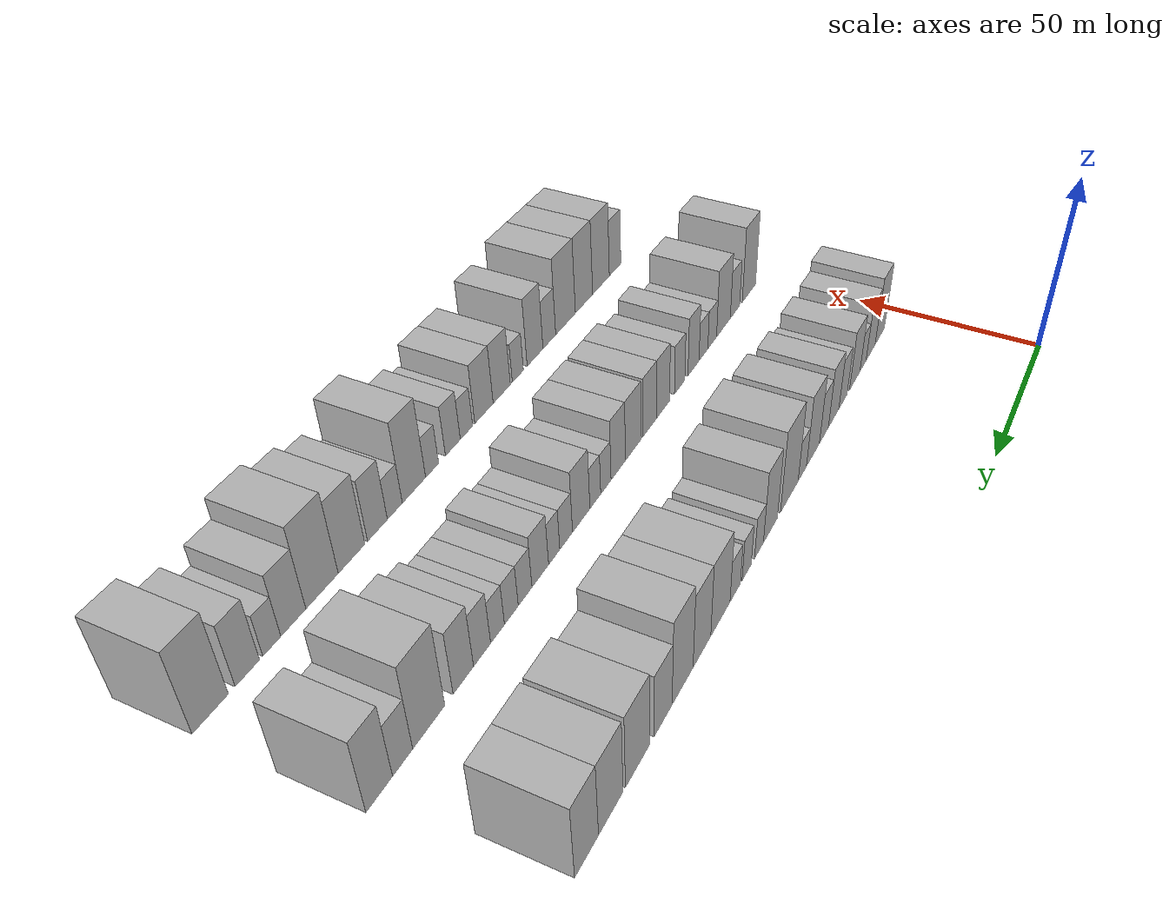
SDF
<sdf version="1.6">
 <world name="default">
  <model name="building_46">
   <static>1</static>
   <pose>50.0000 14.4364 0 0.000000 0.000000 0.000000</pose>
   <link name="link">
    <pose>0 0 10.50 0 0 0</pose>
    <collision name="collision"><geometry><box><size>20.0000 8.4533 21.0000</size></box></geometry></collision>
    <visual name="visual">
     <cast_shadows>0</cast_shadows>
     <geometry><box><size>20.0000 8.4533 21.0000</size></box></geometry>
     <material>
      <script>
       <uri>model://HANNAS_wall/materials/scripts</uri>
       <uri>model://HANNAS_wall/materials/textures</uri>
       <name>vrc/HANNAS_wall</name>
      </script>
     </material>
    </visual>
   </link>
  </model>
  <model name="building_47">
   <static>1</static>
   <pose>50.0000 22.6697 0 0.000000 0.000000 0.000000</pose>
   <link name="link">
    <pose>0 0 9.00 0 0 0</pose>
    <collision name="collision"><geometry><box><size>20.0000 8.0134 18.0000</size></box></geometry></collision>
    <visual name="visual">
     <cast_shadows>0</cast_shadows>
     <geometry><box><size>20.0000 8.0134 18.0000</size></box></geometry>
     <material>
      <script>
       <uri>model://HANNAS_wall/materials/scripts</uri>
       <uri>model://HANNAS_wall/materials/textures</uri>
       <name>vrc/HANNAS_wall</name>
      </script>
     </material>
    </visual>
   </link>
  </model>
  <model name="building_48">
   <static>1</static>
   <pose>50.0000 29.3052 0 0.000000 0.000000 0.000000</pose>
   <link name="link">
    <pose>0 0 6.00 0 0 0</pose>
    <collision name="collision"><geometry><box><size>20.0000 5.2575 12.0000</size></box></geometry></collision>
    <visual name="visual">
     <cast_shadows>0</cast_shadows>
     <geometry><box><size>20.0000 5.2575 12.0000</size></box></geometry>
     <material>
      <script>
       <uri>model://HANNAS_wall/materials/scripts</uri>
       <uri>model://HANNAS_wall/materials/textures</uri>
       <name>vrc/HANNAS_wall</name>
      </script>
     </material>
    </visual>
   </link>
  </model>
  <model name="building_49">
   <static>1</static>
   <pose>50.0000 36.2653 0 0.000000 0.000000 0.000000</pose>
   <link name="link">
    <pose>0 0 9.00 0 0 0</pose>
    <collision name="collision"><geometry><box><size>20.0000 8.6627 18.0000</size></box></geometry></collision>
    <visual name="visual">
     <cast_shadows>0</cast_shadows>
     <geometry><box><size>20.0000 8.6627 18.0000</size></box></geometry>
     <material>
      <script>
       <uri>model://HANNAS_wall/materials/scripts</uri>
       <uri>model://HANNAS_wall/materials/textures</uri>
       <name>vrc/HANNAS_wall</name>
      </script>
     </material>
    </visual>
   </link>
  </model>
  <model name="building_50">
   <static>1</static>
   <pose>50.0000 45.8664 0 0.000000 0.000000 0.000000</pose>
   <link name="link">
    <pose>0 0 7.50 0 0 0</pose>
    <collision name="collision"><geometry><box><size>20.0000 6.5394 15.0000</size></box></geometry></collision>
    <visual name="visual">
     <cast_shadows>0</cast_shadows>
     <geometry><box><size>20.0000 6.5394 15.0000</size></box></geometry>
     <material>
      <script>
       <uri>model://HANNAS_wall/materials/scripts</uri>
       <uri>model://HANNAS_wall/materials/textures</uri>
       <name>vrc/HANNAS_wall</name>
      </script>
     </material>
    </visual>
   </link>
  </model>
  <model name="building_51">
   <static>1</static>
   <pose>50.0000 53.1844 0 0.000000 0.000000 0.000000</pose>
   <link name="link">
    <pose>0 0 9.00 0 0 0</pose>
    <collision name="collision"><geometry><box><size>20.0000 8.0967 18.0000</size></box></geometry></collision>
    <visual name="visual">
     <cast_shadows>0</cast_shadows>
     <geometry><box><size>20.0000 8.0967 18.0000</size></box></geometry>
     <material>
      <script>
       <uri>model://HANNAS_wall/materials/scripts</uri>
       <uri>model://HANNAS_wall/materials/textures</uri>
       <name>vrc/HANNAS_wall</name>
      </script>
     </material>
    </visual>
   </link>
  </model>
  <model name="building_52">
   <static>1</static>
   <pose>50.0000 60.5724 0 0.000000 0.000000 0.000000</pose>
   <link name="link">
    <pose>0 0 7.50 0 0 0</pose>
    <collision name="collision"><geometry><box><size>20.0000 6.6792 15.0000</size></box></geometry></collision>
    <visual name="visual">
     <cast_shadows>0</cast_shadows>
     <geometry><box><size>20.0000 6.6792 15.0000</size></box></geometry>
     <material>
      <script>
       <uri>model://HANNAS_wall/materials/scripts</uri>
       <uri>model://HANNAS_wall/materials/textures</uri>
       <name>vrc/HANNAS_wall</name>
      </script>
     </material>
    </visual>
   </link>
  </model>
  <model name="building_53">
   <static>1</static>
   <pose>50.0000 68.5782 0 0.000000 0.000000 0.000000</pose>
   <link name="link">
    <pose>0 0 10.50 0 0 0</pose>
    <collision name="collision"><geometry><box><size>20.0000 9.3326 21.0000</size></box></geometry></collision>
    <visual name="visual">
     <cast_shadows>0</cast_shadows>
     <geometry><box><size>20.0000 9.3326 21.0000</size></box></geometry>
     <material>
      <script>
       <uri>model://HANNAS_wall/materials/scripts</uri>
       <uri>model://HANNAS_wall/materials/textures</uri>
       <name>vrc/HANNAS_wall</name>
      </script>
     </material>
    </visual>
   </link>
  </model>
  <model name="building_54">
   <static>1</static>
   <pose>50.0000 76.1316 0 0.000000 0.000000 0.000000</pose>
   <link name="link">
    <pose>0 0 6.00 0 0 0</pose>
    <collision name="collision"><geometry><box><size>20.0000 5.7741 12.0000</size></box></geometry></collision>
    <visual name="visual">
     <cast_shadows>0</cast_shadows>
     <geometry><box><size>20.0000 5.7741 12.0000</size></box></geometry>
     <material>
      <script>
       <uri>model://HANNAS_wall/materials/scripts</uri>
       <uri>model://HANNAS_wall/materials/textures</uri>
       <name>vrc/HANNAS_wall</name>
      </script>
     </material>
    </visual>
   </link>
  </model>
  <model name="building_55">
   <static>1</static>
   <pose>50.0000 84.9150 0 0.000000 0.000000 0.000000</pose>
   <link name="link">
    <pose>0 0 12.00 0 0 0</pose>
    <collision name="collision"><geometry><box><size>20.0000 11.7927 24.0000</size></box></geometry></collision>
    <visual name="visual">
     <cast_shadows>0</cast_shadows>
     <geometry><box><size>20.0000 11.7927 24.0000</size></box></geometry>
     <material>
      <script>
       <uri>model://HANNAS_wall/materials/scripts</uri>
       <uri>model://HANNAS_wall/materials/textures</uri>
       <name>vrc/HANNAS_wall</name>
      </script>
     </material>
    </visual>
   </link>
  </model>
  <model name="building_56">
   <static>1</static>
   <pose>50.0000 97.1790 0 0.000000 0.000000 0.000000</pose>
   <link name="link">
    <pose>0 0 10.50 0 0 0</pose>
    <collision name="collision"><geometry><box><size>20.0000 8.7355 21.0000</size></box></geometry></collision>
    <visual name="visual">
     <cast_shadows>0</cast_shadows>
     <geometry><box><size>20.0000 8.7355 21.0000</size></box></geometry>
     <material>
      <script>
       <uri>model://HANNAS_wall/materials/scripts</uri>
       <uri>model://HANNAS_wall/materials/textures</uri>
       <name>vrc/HANNAS_wall</name>
      </script>
     </material>
    </visual>
   </link>
  </model>
  <model name="building_57">
   <static>1</static>
   <pose>50.0000 104.2175 0 0.000000 0.000000 0.000000</pose>
   <link name="link">
    <pose>0 0 6.00 0 0 0</pose>
    <collision name="collision"><geometry><box><size>20.0000 5.3414 12.0000</size></box></geometry></collision>
    <visual name="visual">
     <cast_shadows>0</cast_shadows>
     <geometry><box><size>20.0000 5.3414 12.0000</size></box></geometry>
     <material>
      <script>
       <uri>model://HANNAS_wall/materials/scripts</uri>
       <uri>model://HANNAS_wall/materials/textures</uri>
       <name>vrc/HANNAS_wall</name>
      </script>
     </material>
    </visual>
   </link>
  </model>
  <model name="building_58">
   <static>1</static>
   <pose>50.0000 111.5356 0 0.000000 0.000000 0.000000</pose>
   <link name="link">
    <pose>0 0 6.00 0 0 0</pose>
    <collision name="collision"><geometry><box><size>20.0000 5.2949 12.0000</size></box></geometry></collision>
    <visual name="visual">
     <cast_shadows>0</cast_shadows>
     <geometry><box><size>20.0000 5.2949 12.0000</size></box></geometry>
     <material>
      <script>
       <uri>model://HANNAS_wall/materials/scripts</uri>
       <uri>model://HANNAS_wall/materials/textures</uri>
       <name>vrc/HANNAS_wall</name>
      </script>
     </material>
    </visual>
   </link>
  </model>
  <model name="building_59">
   <static>1</static>
   <pose>50.0000 118.0981 0 0.000000 0.000000 0.000000</pose>
   <link name="link">
    <pose>0 0 6.00 0 0 0</pose>
    <collision name="collision"><geometry><box><size>20.0000 5.8301 12.0000</size></box></geometry></collision>
    <visual name="visual">
     <cast_shadows>0</cast_shadows>
     <geometry><box><size>20.0000 5.8301 12.0000</size></box></geometry>
     <material>
      <script>
       <uri>model://HANNAS_wall/materials/scripts</uri>
       <uri>model://HANNAS_wall/materials/textures</uri>
       <name>vrc/HANNAS_wall</name>
      </script>
     </material>
    </visual>
   </link>
  </model>
  <model name="building_60">
   <static>1</static>
   <pose>50.0000 126.1869 0 0.000000 0.000000 0.000000</pose>
   <link name="link">
    <pose>0 0 10.50 0 0 0</pose>
    <collision name="collision"><geometry><box><size>20.0000 10.3473 21.0000</size></box></geometry></collision>
    <visual name="visual">
     <cast_shadows>0</cast_shadows>
     <geometry><box><size>20.0000 10.3473 21.0000</size></box></geometry>
     <material>
      <script>
       <uri>model://HANNAS_wall/materials/scripts</uri>
       <uri>model://HANNAS_wall/materials/textures</uri>
       <name>vrc/HANNAS_wall</name>
      </script>
     </material>
    </visual>
   </link>
  </model>
  <model name="building_61">
   <static>1</static>
   <pose>50.0000 135.8822 0 0.000000 0.000000 0.000000</pose>
   <link name="link">
    <pose>0 0 10.50 0 0 0</pose>
    <collision name="collision"><geometry><box><size>20.0000 9.0435 21.0000</size></box></geometry></collision>
    <visual name="visual">
     <cast_shadows>0</cast_shadows>
     <geometry><box><size>20.0000 9.0435 21.0000</size></box></geometry>
     <material>
      <script>
       <uri>model://HANNAS_wall/materials/scripts</uri>
       <uri>model://HANNAS_wall/materials/textures</uri>
       <name>vrc/HANNAS_wall</name>
      </script>
     </material>
    </visual>
   </link>
  </model>
  <model name="building_62">
   <static>1</static>
   <pose>50.0000 145.4739 0 0.000000 0.000000 0.000000</pose>
   <link name="link">
    <pose>0 0 12.00 0 0 0</pose>
    <collision name="collision"><geometry><box><size>20.0000 10.1399 24.0000</size></box></geometry></collision>
    <visual name="visual">
     <cast_shadows>0</cast_shadows>
     <geometry><box><size>20.0000 10.1399 24.0000</size></box></geometry>
     <material>
      <script>
       <uri>model://HANNAS_wall/materials/scripts</uri>
       <uri>model://HANNAS_wall/materials/textures</uri>
       <name>vrc/HANNAS_wall</name>
      </script>
     </material>
    </visual>
   </link>
  </model>
  <model name="building_63">
   <static>1</static>
   <pose>50.0000 154.6867 0 0.000000 0.000000 0.000000</pose>
   <link name="link">
    <pose>0 0 9.00 0 0 0</pose>
    <collision name="collision"><geometry><box><size>20.0000 8.2855 18.0000</size></box></geometry></collision>
    <visual name="visual">
     <cast_shadows>0</cast_shadows>
     <geometry><box><size>20.0000 8.2855 18.0000</size></box></geometry>
     <material>
      <script>
       <uri>model://HANNAS_wall/materials/scripts</uri>
       <uri>model://HANNAS_wall/materials/textures</uri>
       <name>vrc/HANNAS_wall</name>
      </script>
     </material>
    </visual>
   </link>
  </model>
  <model name="building_64">
   <static>1</static>
   <pose>50.0000 166.0288 0 0.000000 0.000000 0.000000</pose>
   <link name="link">
    <pose>0 0 10.50 0 0 0</pose>
    <collision name="collision"><geometry><box><size>20.0000 10.3989 21.0000</size></box></geometry></collision>
    <visual name="visual">
     <cast_shadows>0</cast_shadows>
     <geometry><box><size>20.0000 10.3989 21.0000</size></box></geometry>
     <material>
      <script>
       <uri>model://HANNAS_wall/materials/scripts</uri>
       <uri>model://HANNAS_wall/materials/textures</uri>
       <name>vrc/HANNAS_wall</name>
      </script>
     </material>
    </visual>
   </link>
  </model>
  <model name="building_65">
   <static>1</static>
   <pose>50.0000 177.1291 0 0.000000 0.000000 0.000000</pose>
   <link name="link">
    <pose>0 0 10.50 0 0 0</pose>
    <collision name="collision"><geometry><box><size>20.0000 9.8017 21.0000</size></box></geometry></collision>
    <visual name="visual">
     <cast_shadows>0</cast_shadows>
     <geometry><box><size>20.0000 9.8017 21.0000</size></box></geometry>
     <material>
      <script>
       <uri>model://HANNAS_wall/materials/scripts</uri>
       <uri>model://HANNAS_wall/materials/textures</uri>
       <name>vrc/HANNAS_wall</name>
      </script>
     </material>
    </visual>
   </link>
  </model>
  <model name="building_66">
   <static>1</static>
   <pose>50.0000 186.5587 0 0.000000 0.000000 0.000000</pose>
   <link name="link">
    <pose>0 0 10.50 0 0 0</pose>
    <collision name="collision"><geometry><box><size>20.0000 9.0574 21.0000</size></box></geometry></collision>
    <visual name="visual">
     <cast_shadows>0</cast_shadows>
     <geometry><box><size>20.0000 9.0574 21.0000</size></box></geometry>
     <material>
      <script>
       <uri>model://HANNAS_wall/materials/scripts</uri>
       <uri>model://HANNAS_wall/materials/textures</uri>
       <name>vrc/HANNAS_wall</name>
      </script>
     </material>
    </visual>
   </link>
  </model>
  <model name="building_138">
   <static>1</static>
   <pose>90.0000 10.0137 0 0.000000 0.000000 0.000000</pose>
   <link name="link">
    <pose>0 0 12.00 0 0 0</pose>
    <collision name="collision"><geometry><box><size>20.0000 10.1061 24.0000</size></box></geometry></collision>
    <visual name="visual">
     <cast_shadows>0</cast_shadows>
     <geometry><box><size>20.0000 10.1061 24.0000</size></box></geometry>
     <material>
      <script>
       <uri>model://HANNAS_wall/materials/scripts</uri>
       <uri>model://HANNAS_wall/materials/textures</uri>
       <name>vrc/HANNAS_wall</name>
      </script>
     </material>
    </visual>
   </link>
  </model>
  <model name="building_139">
   <static>1</static>
   <pose>90.0000 20.4839 0 0.000000 0.000000 0.000000</pose>
   <link name="link">
    <pose>0 0 7.50 0 0 0</pose>
    <collision name="collision"><geometry><box><size>20.0000 6.8341 15.0000</size></box></geometry></collision>
    <visual name="visual">
     <cast_shadows>0</cast_shadows>
     <geometry><box><size>20.0000 6.8341 15.0000</size></box></geometry>
     <material>
      <script>
       <uri>model://HANNAS_wall/materials/scripts</uri>
       <uri>model://HANNAS_wall/materials/textures</uri>
       <name>vrc/HANNAS_wall</name>
      </script>
     </material>
    </visual>
   </link>
  </model>
  <model name="building_140">
   <static>1</static>
   <pose>90.0000 28.7812 0 0.000000 0.000000 0.000000</pose>
   <link name="link">
    <pose>0 0 10.50 0 0 0</pose>
    <collision name="collision"><geometry><box><size>20.0000 9.7606 21.0000</size></box></geometry></collision>
    <visual name="visual">
     <cast_shadows>0</cast_shadows>
     <geometry><box><size>20.0000 9.7606 21.0000</size></box></geometry>
     <material>
      <script>
       <uri>model://HANNAS_wall/materials/scripts</uri>
       <uri>model://HANNAS_wall/materials/textures</uri>
       <name>vrc/HANNAS_wall</name>
      </script>
     </material>
    </visual>
   </link>
  </model>
  <model name="building_141">
   <static>1</static>
   <pose>90.0000 36.6613 0 0.000000 0.000000 0.000000</pose>
   <link name="link">
    <pose>0 0 6.00 0 0 0</pose>
    <collision name="collision"><geometry><box><size>20.0000 5.9995 12.0000</size></box></geometry></collision>
    <visual name="visual">
     <cast_shadows>0</cast_shadows>
     <geometry><box><size>20.0000 5.9995 12.0000</size></box></geometry>
     <material>
      <script>
       <uri>model://HANNAS_wall/materials/scripts</uri>
       <uri>model://HANNAS_wall/materials/textures</uri>
       <name>vrc/HANNAS_wall</name>
      </script>
     </material>
    </visual>
   </link>
  </model>
  <model name="building_142">
   <static>1</static>
   <pose>90.0000 42.6342 0 0.000000 0.000000 0.000000</pose>
   <link name="link">
    <pose>0 0 6.00 0 0 0</pose>
    <collision name="collision"><geometry><box><size>20.0000 5.9464 12.0000</size></box></geometry></collision>
    <visual name="visual">
     <cast_shadows>0</cast_shadows>
     <geometry><box><size>20.0000 5.9464 12.0000</size></box></geometry>
     <material>
      <script>
       <uri>model://HANNAS_wall/materials/scripts</uri>
       <uri>model://HANNAS_wall/materials/textures</uri>
       <name>vrc/HANNAS_wall</name>
      </script>
     </material>
    </visual>
   </link>
  </model>
  <model name="building_143">
   <static>1</static>
   <pose>90.0000 49.2237 0 0.000000 0.000000 0.000000</pose>
   <link name="link">
    <pose>0 0 9.00 0 0 0</pose>
    <collision name="collision"><geometry><box><size>20.0000 7.2327 18.0000</size></box></geometry></collision>
    <visual name="visual">
     <cast_shadows>0</cast_shadows>
     <geometry><box><size>20.0000 7.2327 18.0000</size></box></geometry>
     <material>
      <script>
       <uri>model://HANNAS_wall/materials/scripts</uri>
       <uri>model://HANNAS_wall/materials/textures</uri>
       <name>vrc/HANNAS_wall</name>
      </script>
     </material>
    </visual>
   </link>
  </model>
  <model name="building_144">
   <static>1</static>
   <pose>90.0000 58.0973 0 0.000000 0.000000 0.000000</pose>
   <link name="link">
    <pose>0 0 7.50 0 0 0</pose>
    <collision name="collision"><geometry><box><size>20.0000 6.5145 15.0000</size></box></geometry></collision>
    <visual name="visual">
     <cast_shadows>0</cast_shadows>
     <geometry><box><size>20.0000 6.5145 15.0000</size></box></geometry>
     <material>
      <script>
       <uri>model://HANNAS_wall/materials/scripts</uri>
       <uri>model://HANNAS_wall/materials/textures</uri>
       <name>vrc/HANNAS_wall</name>
      </script>
     </material>
    </visual>
   </link>
  </model>
  <model name="building_145">
   <static>1</static>
   <pose>90.0000 68.2538 0 0.000000 0.000000 0.000000</pose>
   <link name="link">
    <pose>0 0 9.00 0 0 0</pose>
    <collision name="collision"><geometry><box><size>20.0000 7.7984 18.0000</size></box></geometry></collision>
    <visual name="visual">
     <cast_shadows>0</cast_shadows>
     <geometry><box><size>20.0000 7.7984 18.0000</size></box></geometry>
     <material>
      <script>
       <uri>model://HANNAS_wall/materials/scripts</uri>
       <uri>model://HANNAS_wall/materials/textures</uri>
       <name>vrc/HANNAS_wall</name>
      </script>
     </material>
    </visual>
   </link>
  </model>
  <model name="building_146">
   <static>1</static>
   <pose>90.0000 76.1648 0 0.000000 0.000000 0.000000</pose>
   <link name="link">
    <pose>0 0 9.00 0 0 0</pose>
    <collision name="collision"><geometry><box><size>20.0000 8.0236 18.0000</size></box></geometry></collision>
    <visual name="visual">
     <cast_shadows>0</cast_shadows>
     <geometry><box><size>20.0000 8.0236 18.0000</size></box></geometry>
     <material>
      <script>
       <uri>model://HANNAS_wall/materials/scripts</uri>
       <uri>model://HANNAS_wall/materials/textures</uri>
       <name>vrc/HANNAS_wall</name>
      </script>
     </material>
    </visual>
   </link>
  </model>
  <model name="building_147">
   <static>1</static>
   <pose>90.0000 85.4776 0 0.000000 0.000000 0.000000</pose>
   <link name="link">
    <pose>0 0 9.00 0 0 0</pose>
    <collision name="collision"><geometry><box><size>20.0000 8.6020 18.0000</size></box></geometry></collision>
    <visual name="visual">
     <cast_shadows>0</cast_shadows>
     <geometry><box><size>20.0000 8.6020 18.0000</size></box></geometry>
     <material>
      <script>
       <uri>model://HANNAS_wall/materials/scripts</uri>
       <uri>model://HANNAS_wall/materials/textures</uri>
       <name>vrc/HANNAS_wall</name>
      </script>
     </material>
    </visual>
   </link>
  </model>
  <model name="building_148">
   <static>1</static>
   <pose>90.0000 93.6352 0 0.000000 0.000000 0.000000</pose>
   <link name="link">
    <pose>0 0 9.00 0 0 0</pose>
    <collision name="collision"><geometry><box><size>20.0000 7.7131 18.0000</size></box></geometry></collision>
    <visual name="visual">
     <cast_shadows>0</cast_shadows>
     <geometry><box><size>20.0000 7.7131 18.0000</size></box></geometry>
     <material>
      <script>
       <uri>model://HANNAS_wall/materials/scripts</uri>
       <uri>model://HANNAS_wall/materials/textures</uri>
       <name>vrc/HANNAS_wall</name>
      </script>
     </material>
    </visual>
   </link>
  </model>
  <model name="building_149">
   <static>1</static>
   <pose>90.0000 100.1645 0 0.000000 0.000000 0.000000</pose>
   <link name="link">
    <pose>0 0 6.00 0 0 0</pose>
    <collision name="collision"><geometry><box><size>20.0000 5.3455 12.0000</size></box></geometry></collision>
    <visual name="visual">
     <cast_shadows>0</cast_shadows>
     <geometry><box><size>20.0000 5.3455 12.0000</size></box></geometry>
     <material>
      <script>
       <uri>model://HANNAS_wall/materials/scripts</uri>
       <uri>model://HANNAS_wall/materials/textures</uri>
       <name>vrc/HANNAS_wall</name>
      </script>
     </material>
    </visual>
   </link>
  </model>
  <model name="building_150">
   <static>1</static>
   <pose>90.0000 105.5633 0 0.000000 0.000000 0.000000</pose>
   <link name="link">
    <pose>0 0 6.00 0 0 0</pose>
    <collision name="collision"><geometry><box><size>20.0000 5.4522 12.0000</size></box></geometry></collision>
    <visual name="visual">
     <cast_shadows>0</cast_shadows>
     <geometry><box><size>20.0000 5.4522 12.0000</size></box></geometry>
     <material>
      <script>
       <uri>model://HANNAS_wall/materials/scripts</uri>
       <uri>model://HANNAS_wall/materials/textures</uri>
       <name>vrc/HANNAS_wall</name>
      </script>
     </material>
    </visual>
   </link>
  </model>
  <model name="building_151">
   <static>1</static>
   <pose>90.0000 112.5246 0 0.000000 0.000000 0.000000</pose>
   <link name="link">
    <pose>0 0 9.00 0 0 0</pose>
    <collision name="collision"><geometry><box><size>20.0000 8.4703 18.0000</size></box></geometry></collision>
    <visual name="visual">
     <cast_shadows>0</cast_shadows>
     <geometry><box><size>20.0000 8.4703 18.0000</size></box></geometry>
     <material>
      <script>
       <uri>model://HANNAS_wall/materials/scripts</uri>
       <uri>model://HANNAS_wall/materials/textures</uri>
       <name>vrc/HANNAS_wall</name>
      </script>
     </material>
    </visual>
   </link>
  </model>
  <model name="building_152">
   <static>1</static>
   <pose>90.0000 119.7582 0 0.000000 0.000000 0.000000</pose>
   <link name="link">
    <pose>0 0 6.00 0 0 0</pose>
    <collision name="collision"><geometry><box><size>20.0000 5.9969 12.0000</size></box></geometry></collision>
    <visual name="visual">
     <cast_shadows>0</cast_shadows>
     <geometry><box><size>20.0000 5.9969 12.0000</size></box></geometry>
     <material>
      <script>
       <uri>model://HANNAS_wall/materials/scripts</uri>
       <uri>model://HANNAS_wall/materials/textures</uri>
       <name>vrc/HANNAS_wall</name>
      </script>
     </material>
    </visual>
   </link>
  </model>
  <model name="building_153">
   <static>1</static>
   <pose>90.0000 125.3127 0 0.000000 0.000000 0.000000</pose>
   <link name="link">
    <pose>0 0 6.00 0 0 0</pose>
    <collision name="collision"><geometry><box><size>20.0000 5.1121 12.0000</size></box></geometry></collision>
    <visual name="visual">
     <cast_shadows>0</cast_shadows>
     <geometry><box><size>20.0000 5.1121 12.0000</size></box></geometry>
     <material>
      <script>
       <uri>model://HANNAS_wall/materials/scripts</uri>
       <uri>model://HANNAS_wall/materials/textures</uri>
       <name>vrc/HANNAS_wall</name>
      </script>
     </material>
    </visual>
   </link>
  </model>
  <model name="building_154">
   <static>1</static>
   <pose>90.0000 131.5508 0 0.000000 0.000000 0.000000</pose>
   <link name="link">
    <pose>0 0 7.50 0 0 0</pose>
    <collision name="collision"><geometry><box><size>20.0000 7.3640 15.0000</size></box></geometry></collision>
    <visual name="visual">
     <cast_shadows>0</cast_shadows>
     <geometry><box><size>20.0000 7.3640 15.0000</size></box></geometry>
     <material>
      <script>
       <uri>model://HANNAS_wall/materials/scripts</uri>
       <uri>model://HANNAS_wall/materials/textures</uri>
       <name>vrc/HANNAS_wall</name>
      </script>
     </material>
    </visual>
   </link>
  </model>
  <model name="building_155">
   <static>1</static>
   <pose>90.0000 138.1663 0 0.000000 0.000000 0.000000</pose>
   <link name="link">
    <pose>0 0 6.00 0 0 0</pose>
    <collision name="collision"><geometry><box><size>20.0000 5.8670 12.0000</size></box></geometry></collision>
    <visual name="visual">
     <cast_shadows>0</cast_shadows>
     <geometry><box><size>20.0000 5.8670 12.0000</size></box></geometry>
     <material>
      <script>
       <uri>model://HANNAS_wall/materials/scripts</uri>
       <uri>model://HANNAS_wall/materials/textures</uri>
       <name>vrc/HANNAS_wall</name>
      </script>
     </material>
    </visual>
   </link>
  </model>
  <model name="building_156">
   <static>1</static>
   <pose>90.0000 143.9632 0 0.000000 0.000000 0.000000</pose>
   <link name="link">
    <pose>0 0 6.00 0 0 0</pose>
    <collision name="collision"><geometry><box><size>20.0000 5.7268 12.0000</size></box></geometry></collision>
    <visual name="visual">
     <cast_shadows>0</cast_shadows>
     <geometry><box><size>20.0000 5.7268 12.0000</size></box></geometry>
     <material>
      <script>
       <uri>model://HANNAS_wall/materials/scripts</uri>
       <uri>model://HANNAS_wall/materials/textures</uri>
       <name>vrc/HANNAS_wall</name>
      </script>
     </material>
    </visual>
   </link>
  </model>
  <model name="building_157">
   <static>1</static>
   <pose>90.0000 149.6030 0 0.000000 0.000000 0.000000</pose>
   <link name="link">
    <pose>0 0 6.00 0 0 0</pose>
    <collision name="collision"><geometry><box><size>20.0000 5.5527 12.0000</size></box></geometry></collision>
    <visual name="visual">
     <cast_shadows>0</cast_shadows>
     <geometry><box><size>20.0000 5.5527 12.0000</size></box></geometry>
     <material>
      <script>
       <uri>model://HANNAS_wall/materials/scripts</uri>
       <uri>model://HANNAS_wall/materials/textures</uri>
       <name>vrc/HANNAS_wall</name>
      </script>
     </material>
    </visual>
   </link>
  </model>
  <model name="building_158">
   <static>1</static>
   <pose>90.0000 155.7034 0 0.000000 0.000000 0.000000</pose>
   <link name="link">
    <pose>0 0 7.50 0 0 0</pose>
    <collision name="collision"><geometry><box><size>20.0000 6.6483 15.0000</size></box></geometry></collision>
    <visual name="visual">
     <cast_shadows>0</cast_shadows>
     <geometry><box><size>20.0000 6.6483 15.0000</size></box></geometry>
     <material>
      <script>
       <uri>model://HANNAS_wall/materials/scripts</uri>
       <uri>model://HANNAS_wall/materials/textures</uri>
       <name>vrc/HANNAS_wall</name>
      </script>
     </material>
    </visual>
   </link>
  </model>
  <model name="building_159">
   <static>1</static>
   <pose>90.0000 162.8505 0 0.000000 0.000000 0.000000</pose>
   <link name="link">
    <pose>0 0 9.00 0 0 0</pose>
    <collision name="collision"><geometry><box><size>20.0000 7.6459 18.0000</size></box></geometry></collision>
    <visual name="visual">
     <cast_shadows>0</cast_shadows>
     <geometry><box><size>20.0000 7.6459 18.0000</size></box></geometry>
     <material>
      <script>
       <uri>model://HANNAS_wall/materials/scripts</uri>
       <uri>model://HANNAS_wall/materials/textures</uri>
       <name>vrc/HANNAS_wall</name>
      </script>
     </material>
    </visual>
   </link>
  </model>
  <model name="building_160">
   <static>1</static>
   <pose>90.0000 175.2491 0 0.000000 0.000000 0.000000</pose>
   <link name="link">
    <pose>0 0 12.00 0 0 0</pose>
    <collision name="collision"><geometry><box><size>20.0000 11.1513 24.0000</size></box></geometry></collision>
    <visual name="visual">
     <cast_shadows>0</cast_shadows>
     <geometry><box><size>20.0000 11.1513 24.0000</size></box></geometry>
     <material>
      <script>
       <uri>model://HANNAS_wall/materials/scripts</uri>
       <uri>model://HANNAS_wall/materials/textures</uri>
       <name>vrc/HANNAS_wall</name>
      </script>
     </material>
    </visual>
   </link>
  </model>
  <model name="building_161">
   <static>1</static>
   <pose>90.0000 184.1507 0 0.000000 0.000000 0.000000</pose>
   <link name="link">
    <pose>0 0 7.50 0 0 0</pose>
    <collision name="collision"><geometry><box><size>20.0000 6.6519 15.0000</size></box></geometry></collision>
    <visual name="visual">
     <cast_shadows>0</cast_shadows>
     <geometry><box><size>20.0000 6.6519 15.0000</size></box></geometry>
     <material>
      <script>
       <uri>model://HANNAS_wall/materials/scripts</uri>
       <uri>model://HANNAS_wall/materials/textures</uri>
       <name>vrc/HANNAS_wall</name>
      </script>
     </material>
    </visual>
   </link>
  </model>
  <model name="building_162">
   <static>1</static>
   <pose>90.0000 191.6919 0 0.000000 0.000000 0.000000</pose>
   <link name="link">
    <pose>0 0 10.50 0 0 0</pose>
    <collision name="collision"><geometry><box><size>20.0000 8.4305 21.0000</size></box></geometry></collision>
    <visual name="visual">
     <cast_shadows>0</cast_shadows>
     <geometry><box><size>20.0000 8.4305 21.0000</size></box></geometry>
     <material>
      <script>
       <uri>model://HANNAS_wall/materials/scripts</uri>
       <uri>model://HANNAS_wall/materials/textures</uri>
       <name>vrc/HANNAS_wall</name>
      </script>
     </material>
    </visual>
   </link>
  </model>
  <model name="building_226">
   <static>1</static>
   <pose>130.0000 15.2692 0 0.000000 0.000000 0.000000</pose>
   <link name="link">
    <pose>0 0 9.00 0 0 0</pose>
    <collision name="collision"><geometry><box><size>20.0000 7.4879 18.0000</size></box></geometry></collision>
    <visual name="visual">
     <cast_shadows>0</cast_shadows>
     <geometry><box><size>20.0000 7.4879 18.0000</size></box></geometry>
     <material>
      <script>
       <uri>model://HANNAS_wall/materials/scripts</uri>
       <uri>model://HANNAS_wall/materials/textures</uri>
       <name>vrc/HANNAS_wall</name>
      </script>
     </material>
    </visual>
   </link>
  </model>
  <model name="building_227">
   <static>1</static>
   <pose>130.0000 24.2900 0 0.000000 0.000000 0.000000</pose>
   <link name="link">
    <pose>0 0 12.00 0 0 0</pose>
    <collision name="collision"><geometry><box><size>20.0000 10.5537 24.0000</size></box></geometry></collision>
    <visual name="visual">
     <cast_shadows>0</cast_shadows>
     <geometry><box><size>20.0000 10.5537 24.0000</size></box></geometry>
     <material>
      <script>
       <uri>model://HANNAS_wall/materials/scripts</uri>
       <uri>model://HANNAS_wall/materials/textures</uri>
       <name>vrc/HANNAS_wall</name>
      </script>
     </material>
    </visual>
   </link>
  </model>
  <model name="building_228">
   <static>1</static>
   <pose>130.0000 34.7981 0 0.000000 0.000000 0.000000</pose>
   <link name="link">
    <pose>0 0 12.00 0 0 0</pose>
    <collision name="collision"><geometry><box><size>20.0000 10.4624 24.0000</size></box></geometry></collision>
    <visual name="visual">
     <cast_shadows>0</cast_shadows>
     <geometry><box><size>20.0000 10.4624 24.0000</size></box></geometry>
     <material>
      <script>
       <uri>model://HANNAS_wall/materials/scripts</uri>
       <uri>model://HANNAS_wall/materials/textures</uri>
       <name>vrc/HANNAS_wall</name>
      </script>
     </material>
    </visual>
   </link>
  </model>
  <model name="building_229">
   <static>1</static>
   <pose>130.0000 45.7467 0 0.000000 0.000000 0.000000</pose>
   <link name="link">
    <pose>0 0 12.00 0 0 0</pose>
    <collision name="collision"><geometry><box><size>20.0000 11.4346 24.0000</size></box></geometry></collision>
    <visual name="visual">
     <cast_shadows>0</cast_shadows>
     <geometry><box><size>20.0000 11.4346 24.0000</size></box></geometry>
     <material>
      <script>
       <uri>model://HANNAS_wall/materials/scripts</uri>
       <uri>model://HANNAS_wall/materials/textures</uri>
       <name>vrc/HANNAS_wall</name>
      </script>
     </material>
    </visual>
   </link>
  </model>
  <model name="building_230">
   <static>1</static>
   <pose>130.0000 55.0203 0 0.000000 0.000000 0.000000</pose>
   <link name="link">
    <pose>0 0 7.50 0 0 0</pose>
    <collision name="collision"><geometry><box><size>20.0000 7.1127 15.0000</size></box></geometry></collision>
    <visual name="visual">
     <cast_shadows>0</cast_shadows>
     <geometry><box><size>20.0000 7.1127 15.0000</size></box></geometry>
     <material>
      <script>
       <uri>model://HANNAS_wall/materials/scripts</uri>
       <uri>model://HANNAS_wall/materials/textures</uri>
       <name>vrc/HANNAS_wall</name>
      </script>
     </material>
    </visual>
   </link>
  </model>
  <model name="building_231">
   <static>1</static>
   <pose>130.0000 62.8561 0 0.000000 0.000000 0.000000</pose>
   <link name="link">
    <pose>0 0 10.50 0 0 0</pose>
    <collision name="collision"><geometry><box><size>20.0000 8.5590 21.0000</size></box></geometry></collision>
    <visual name="visual">
     <cast_shadows>0</cast_shadows>
     <geometry><box><size>20.0000 8.5590 21.0000</size></box></geometry>
     <material>
      <script>
       <uri>model://HANNAS_wall/materials/scripts</uri>
       <uri>model://HANNAS_wall/materials/textures</uri>
       <name>vrc/HANNAS_wall</name>
      </script>
     </material>
    </visual>
   </link>
  </model>
  <model name="building_232">
   <static>1</static>
   <pose>130.0000 72.0090 0 0.000000 0.000000 0.000000</pose>
   <link name="link">
    <pose>0 0 6.00 0 0 0</pose>
    <collision name="collision"><geometry><box><size>20.0000 5.7467 12.0000</size></box></geometry></collision>
    <visual name="visual">
     <cast_shadows>0</cast_shadows>
     <geometry><box><size>20.0000 5.7467 12.0000</size></box></geometry>
     <material>
      <script>
       <uri>model://HANNAS_wall/materials/scripts</uri>
       <uri>model://HANNAS_wall/materials/textures</uri>
       <name>vrc/HANNAS_wall</name>
      </script>
     </material>
    </visual>
   </link>
  </model>
  <model name="building_233">
   <static>1</static>
   <pose>130.0000 80.1867 0 0.000000 0.000000 0.000000</pose>
   <link name="link">
    <pose>0 0 9.00 0 0 0</pose>
    <collision name="collision"><geometry><box><size>20.0000 8.6088 18.0000</size></box></geometry></collision>
    <visual name="visual">
     <cast_shadows>0</cast_shadows>
     <geometry><box><size>20.0000 8.6088 18.0000</size></box></geometry>
     <material>
      <script>
       <uri>model://HANNAS_wall/materials/scripts</uri>
       <uri>model://HANNAS_wall/materials/textures</uri>
       <name>vrc/HANNAS_wall</name>
      </script>
     </material>
    </visual>
   </link>
  </model>
  <model name="building_234">
   <static>1</static>
   <pose>130.0000 88.9280 0 0.000000 0.000000 0.000000</pose>
   <link name="link">
    <pose>0 0 9.00 0 0 0</pose>
    <collision name="collision"><geometry><box><size>20.0000 8.8736 18.0000</size></box></geometry></collision>
    <visual name="visual">
     <cast_shadows>0</cast_shadows>
     <geometry><box><size>20.0000 8.8736 18.0000</size></box></geometry>
     <material>
      <script>
       <uri>model://HANNAS_wall/materials/scripts</uri>
       <uri>model://HANNAS_wall/materials/textures</uri>
       <name>vrc/HANNAS_wall</name>
      </script>
     </material>
    </visual>
   </link>
  </model>
  <model name="building_235">
   <static>1</static>
   <pose>130.0000 97.2356 0 0.000000 0.000000 0.000000</pose>
   <link name="link">
    <pose>0 0 6.00 0 0 0</pose>
    <collision name="collision"><geometry><box><size>20.0000 5.7417 12.0000</size></box></geometry></collision>
    <visual name="visual">
     <cast_shadows>0</cast_shadows>
     <geometry><box><size>20.0000 5.7417 12.0000</size></box></geometry>
     <material>
      <script>
       <uri>model://HANNAS_wall/materials/scripts</uri>
       <uri>model://HANNAS_wall/materials/textures</uri>
       <name>vrc/HANNAS_wall</name>
      </script>
     </material>
    </visual>
   </link>
  </model>
  <model name="building_236">
   <static>1</static>
   <pose>130.0000 103.4651 0 0.000000 0.000000 0.000000</pose>
   <link name="link">
    <pose>0 0 7.50 0 0 0</pose>
    <collision name="collision"><geometry><box><size>20.0000 6.7172 15.0000</size></box></geometry></collision>
    <visual name="visual">
     <cast_shadows>0</cast_shadows>
     <geometry><box><size>20.0000 6.7172 15.0000</size></box></geometry>
     <material>
      <script>
       <uri>model://HANNAS_wall/materials/scripts</uri>
       <uri>model://HANNAS_wall/materials/textures</uri>
       <name>vrc/HANNAS_wall</name>
      </script>
     </material>
    </visual>
   </link>
  </model>
  <model name="building_237">
   <static>1</static>
   <pose>130.0000 112.6318 0 0.000000 0.000000 0.000000</pose>
   <link name="link">
    <pose>0 0 6.00 0 0 0</pose>
    <collision name="collision"><geometry><box><size>20.0000 5.6163 12.0000</size></box></geometry></collision>
    <visual name="visual">
     <cast_shadows>0</cast_shadows>
     <geometry><box><size>20.0000 5.6163 12.0000</size></box></geometry>
     <material>
      <script>
       <uri>model://HANNAS_wall/materials/scripts</uri>
       <uri>model://HANNAS_wall/materials/textures</uri>
       <name>vrc/HANNAS_wall</name>
      </script>
     </material>
    </visual>
   </link>
  </model>
  <model name="building_238">
   <static>1</static>
   <pose>130.0000 120.2974 0 0.000000 0.000000 0.000000</pose>
   <link name="link">
    <pose>0 0 12.00 0 0 0</pose>
    <collision name="collision"><geometry><box><size>20.0000 9.7150 24.0000</size></box></geometry></collision>
    <visual name="visual">
     <cast_shadows>0</cast_shadows>
     <geometry><box><size>20.0000 9.7150 24.0000</size></box></geometry>
     <material>
      <script>
       <uri>model://HANNAS_wall/materials/scripts</uri>
       <uri>model://HANNAS_wall/materials/textures</uri>
       <name>vrc/HANNAS_wall</name>
      </script>
     </material>
    </visual>
   </link>
  </model>
  <model name="building_239">
   <static>1</static>
   <pose>130.0000 128.1496 0 0.000000 0.000000 0.000000</pose>
   <link name="link">
    <pose>0 0 6.00 0 0 0</pose>
    <collision name="collision"><geometry><box><size>20.0000 5.9894 12.0000</size></box></geometry></collision>
    <visual name="visual">
     <cast_shadows>0</cast_shadows>
     <geometry><box><size>20.0000 5.9894 12.0000</size></box></geometry>
     <material>
      <script>
       <uri>model://HANNAS_wall/materials/scripts</uri>
       <uri>model://HANNAS_wall/materials/textures</uri>
       <name>vrc/HANNAS_wall</name>
      </script>
     </material>
    </visual>
   </link>
  </model>
  <model name="building_240">
   <static>1</static>
   <pose>130.0000 134.9984 0 0.000000 0.000000 0.000000</pose>
   <link name="link">
    <pose>0 0 9.00 0 0 0</pose>
    <collision name="collision"><geometry><box><size>20.0000 7.7082 18.0000</size></box></geometry></collision>
    <visual name="visual">
     <cast_shadows>0</cast_shadows>
     <geometry><box><size>20.0000 7.7082 18.0000</size></box></geometry>
     <material>
      <script>
       <uri>model://HANNAS_wall/materials/scripts</uri>
       <uri>model://HANNAS_wall/materials/textures</uri>
       <name>vrc/HANNAS_wall</name>
      </script>
     </material>
    </visual>
   </link>
  </model>
  <model name="building_241">
   <static>1</static>
   <pose>130.0000 144.7753 0 0.000000 0.000000 0.000000</pose>
   <link name="link">
    <pose>0 0 10.50 0 0 0</pose>
    <collision name="collision"><geometry><box><size>20.0000 9.8455 21.0000</size></box></geometry></collision>
    <visual name="visual">
     <cast_shadows>0</cast_shadows>
     <geometry><box><size>20.0000 9.8455 21.0000</size></box></geometry>
     <material>
      <script>
       <uri>model://HANNAS_wall/materials/scripts</uri>
       <uri>model://HANNAS_wall/materials/textures</uri>
       <name>vrc/HANNAS_wall</name>
      </script>
     </material>
    </visual>
   </link>
  </model>
  <model name="building_242">
   <static>1</static>
   <pose>130.0000 155.3588 0 0.000000 0.000000 0.000000</pose>
   <link name="link">
    <pose>0 0 12.00 0 0 0</pose>
    <collision name="collision"><geometry><box><size>20.0000 11.3214 24.0000</size></box></geometry></collision>
    <visual name="visual">
     <cast_shadows>0</cast_shadows>
     <geometry><box><size>20.0000 11.3214 24.0000</size></box></geometry>
     <material>
      <script>
       <uri>model://HANNAS_wall/materials/scripts</uri>
       <uri>model://HANNAS_wall/materials/textures</uri>
       <name>vrc/HANNAS_wall</name>
      </script>
     </material>
    </visual>
   </link>
  </model>
  <model name="building_243">
   <static>1</static>
   <pose>130.0000 165.1665 0 0.000000 0.000000 0.000000</pose>
   <link name="link">
    <pose>0 0 9.00 0 0 0</pose>
    <collision name="collision"><geometry><box><size>20.0000 8.2941 18.0000</size></box></geometry></collision>
    <visual name="visual">
     <cast_shadows>0</cast_shadows>
     <geometry><box><size>20.0000 8.2941 18.0000</size></box></geometry>
     <material>
      <script>
       <uri>model://HANNAS_wall/materials/scripts</uri>
       <uri>model://HANNAS_wall/materials/textures</uri>
       <name>vrc/HANNAS_wall</name>
      </script>
     </material>
    </visual>
   </link>
  </model>
  <model name="building_244">
   <static>1</static>
   <pose>130.0000 172.1950 0 0.000000 0.000000 0.000000</pose>
   <link name="link">
    <pose>0 0 6.00 0 0 0</pose>
    <collision name="collision"><geometry><box><size>20.0000 5.7629 12.0000</size></box></geometry></collision>
    <visual name="visual">
     <cast_shadows>0</cast_shadows>
     <geometry><box><size>20.0000 5.7629 12.0000</size></box></geometry>
     <material>
      <script>
       <uri>model://HANNAS_wall/materials/scripts</uri>
       <uri>model://HANNAS_wall/materials/textures</uri>
       <name>vrc/HANNAS_wall</name>
      </script>
     </material>
    </visual>
   </link>
  </model>
  <model name="building_245">
   <static>1</static>
   <pose>130.0000 179.8125 0 0.000000 0.000000 0.000000</pose>
   <link name="link">
    <pose>0 0 9.00 0 0 0</pose>
    <collision name="collision"><geometry><box><size>20.0000 7.4720 18.0000</size></box></geometry></collision>
    <visual name="visual">
     <cast_shadows>0</cast_shadows>
     <geometry><box><size>20.0000 7.4720 18.0000</size></box></geometry>
     <material>
      <script>
       <uri>model://HANNAS_wall/materials/scripts</uri>
       <uri>model://HANNAS_wall/materials/textures</uri>
       <name>vrc/HANNAS_wall</name>
      </script>
     </material>
    </visual>
   </link>
  </model>
  <model name="building_246">
   <static>1</static>
   <pose>130.0000 190.7867 0 0.000000 0.000000 0.000000</pose>
   <link name="link">
    <pose>0 0 12.00 0 0 0</pose>
    <collision name="collision"><geometry><box><size>20.0000 10.4764 24.0000</size></box></geometry></collision>
    <visual name="visual">
     <cast_shadows>0</cast_shadows>
     <geometry><box><size>20.0000 10.4764 24.0000</size></box></geometry>
     <material>
      <script>
       <uri>model://HANNAS_wall/materials/scripts</uri>
       <uri>model://HANNAS_wall/materials/textures</uri>
       <name>vrc/HANNAS_wall</name>
      </script>
     </material>
    </visual>
   </link>
  </model>
 </world>
</sdf>
